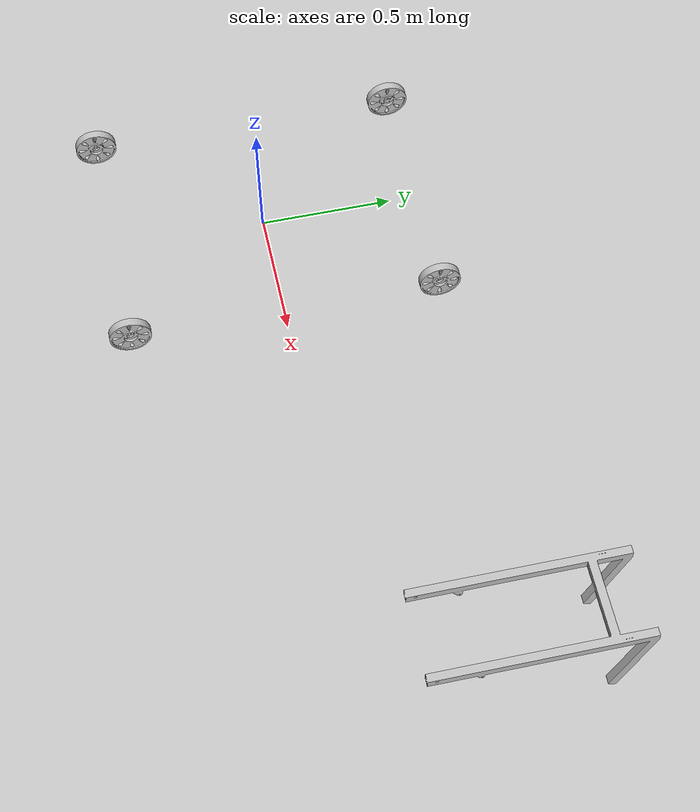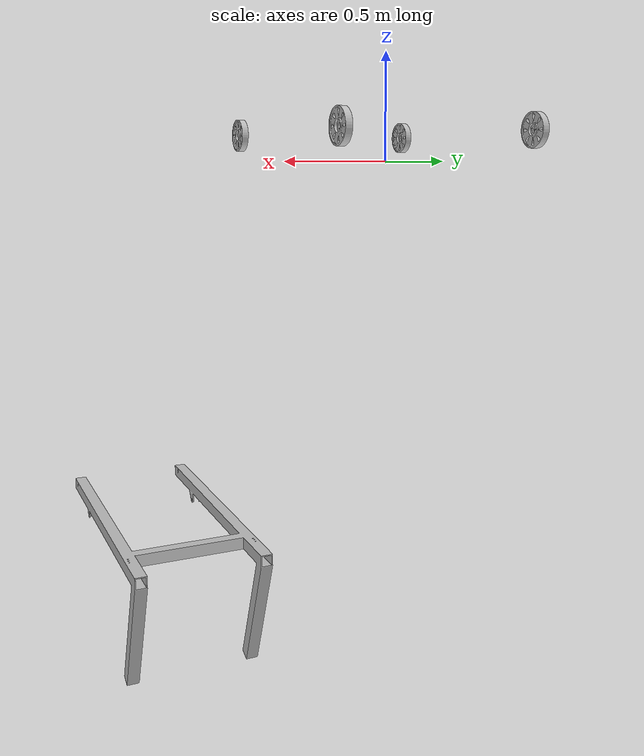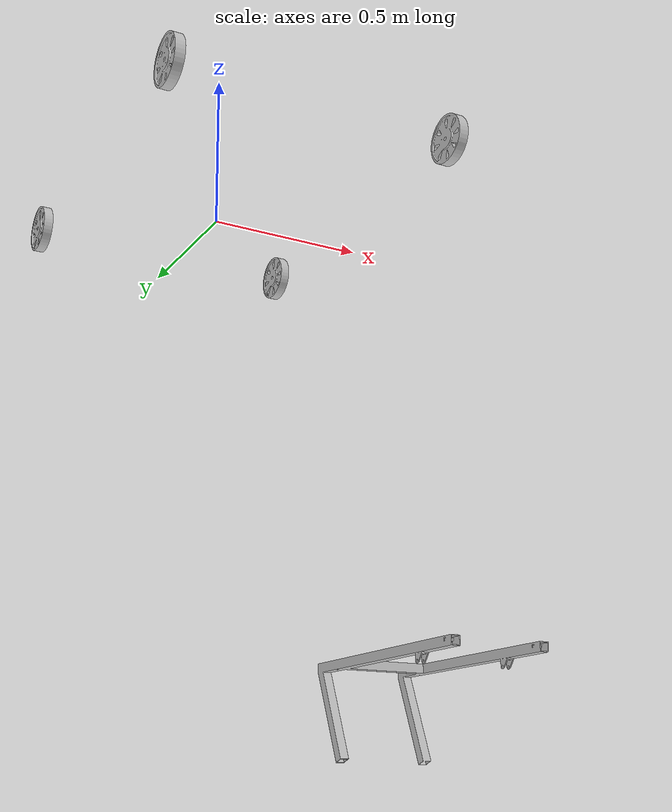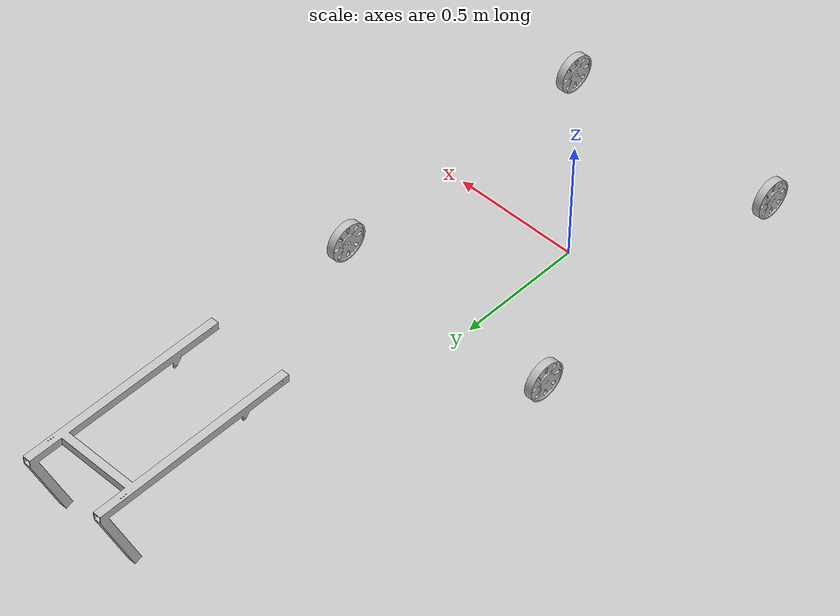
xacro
<?xml version="1.0"?>
<robot name="legendary_rover" xmlns:xacro="http://www.ros.org/wiki/xacro">
  <!-- ******************************* XACRO ******************************* -->
  <xacro:arg name="is_ignition" default="true"/>

  <xacro:arg name="use_ros2_control" default="true"/>
  <xacro:arg name="sim_mode" default="true"/>
  <xacro:include filename="ros2_control.xacro" />
  <xacro:include filename="gazebo_control.xacro" />
  <!-- ******************************* Links ******************************* -->
  <link name="base_link">
  </link>

  <joint name="base_footprint_joint" type="fixed">
      <parent link="base_link"/>
      <child link="base_footprint"/>
      <origin xyz="0 0 0" rpy="0 0 0"/>
  </joint>

  <link name="base_footprint">
  </link>

  <joint name="chassis_joint" type="fixed">
      <parent link="base_link"/>
      <child link="chassis"/>
      <origin xyz="0 0 0.37" rpy="1.5708 0 1.5708"/>
  </joint>
  <link
    name="chassis">
    <inertial>
      <origin
        xyz="0.00322150223165306 -0.0317835441688463 0.0392262662545424"
        rpy="0 0 0" />
      <mass
        value="13.9113253461594" />
      <inertia
        ixx="0.137500217365985"
        ixy="-1.50640906549854E-05"
        ixz="-4.20418177659327E-05"
        iyy="0.158013840900767"
        iyz="1.36293755133581E-06"
        izz="0.0668521247692141" />
    </inertial>
    <visual>
      <origin
        xyz="0 0 0"
        rpy="0 0 0" />
      <geometry>
        <mesh
          filename="package://description/meshes/base_link.STL" />
      </geometry>
      <material
        name="">
        <color
          rgba="0.752941176470588 0.752941176470588 0.752941176470588 1" />
      </material>
    </visual>
    <collision>
      <origin
        xyz="0 0 0"
        rpy="0 0 0" />
      <geometry>
        <mesh
          filename="package://description/meshes/base_link.STL" />
      </geometry>
    </collision>
  </link>
  <link
    name="FL_wheel">
    <inertial>
      <origin
        xyz="-0.0657932903439138 0.00142869200681425 9.9374601122415E-06"
        rpy="0 0 0" />
      <mass
        value="1.6444086136415" />
      <inertia
        ixx="0.0139876753457463"
        ixy="-0.000132035977836167"
        ixz="3.15709065074939E-08"
        iyy="0.00769928738544249"
        iyz="7.8978424094368E-07"
        izz="0.0076927565336923" />
    </inertial>
    <visual>
      <origin
        xyz="0 0 0"
        rpy="0 0 0" />
      <geometry>
        <mesh
          filename="package://description/meshes/FL_wheel.STL" />
      </geometry>
      <material
        name="">
        <color
          rgba="0.752941176470588 0.752941176470588 0.752941176470588 1" />
      </material>
    </visual>
    <collision>
      <origin
        xyz="0 0 0"
        rpy="0 0 0" />
      <geometry>
        <mesh
          filename="package://description/meshes/FL_wheel.STL" />
      </geometry>
    </collision>
  </link>
  <joint
    name="FL_wheel_joint"
    type="continuous">
    <origin
      xyz="0.578691303668632 -0.237965989839832 0.501750000756599"
      rpy="0 0 0" />
    <parent
      link="chassis" />
    <child
      link="FL_wheel" />
    <axis
      xyz="0.999779852268619 -0.0209820637149624 0" />
  </joint>
  <link
    name="BL_wheel">
    <inertial>
      <origin
        xyz="-0.0657953215031118 0.00133190879616998 -1.102290957955E-06"
        rpy="0 0 0" />
      <mass
        value="1.64440861363231" />
      <inertia
        ixx="0.0139876757533367"
        ixy="-0.000132024644816703"
        ixz="-1.42789492436747E-08"
        iyy="0.00769944516583351"
        iyz="6.94182413139629E-08"
        izz="0.00769259835014326" />
    </inertial>
    <visual>
      <origin
        xyz="0 0 0"
        rpy="0 0 0" />
      <geometry>
        <mesh
          filename="package://description/meshes/BL_wheel.STL" />
      </geometry>
      <material
        name="">
        <color
          rgba="0.752941176470588 0.752941176470588 0.752941176470588 1" />
      </material>
    </visual>
    <collision>
      <origin
        xyz="0 0 0"
        rpy="0 0 0" />
      <geometry>
        <mesh
          filename="package://description/meshes/BL_wheel.STL" />
      </geometry>
    </collision>
  </link>
  <joint
    name="BL_wheel_joint"
    type="continuous">
    <origin
      xyz="0.578691303668647 -0.237965989839099 -0.401750000000183"
      rpy="0 0 0" />
    <parent
      link="chassis" />
    <child
      link="BL_wheel" />
    <axis
      xyz="0.999779852268619 -0.0209820637149624 0" />
  </joint>
  <link
    name="FR_wheel">
    <inertial>
      <origin
        xyz="0.0657913230041458 0.0013308416445233 8.05670440151562E-06"
        rpy="0 0 0" />
      <mass
        value="1.64440861363838" />
      <inertia
        ixx="0.0139876756245162"
        ixy="0.000132029029633682"
        ixz="1.32421956480498E-09"
        iyy="0.00769931570657865"
        iyz="-6.97714576728623E-07"
        izz="0.00769272793356072" />
    </inertial>
    <visual>
      <origin
        xyz="0 0 0"
        rpy="0 0 0" />
      <geometry>
        <mesh
          filename="package://description/meshes/FR_wheel.STL" />
      </geometry>
      <material
        name="">
        <color
          rgba="0.752941176470588 0.752941176470588 0.752941176470588 1" />
      </material>
    </visual>
    <collision>
      <origin
        xyz="0 0 0"
        rpy="0 0 0" />
      <geometry>
        <mesh
          filename="package://description/meshes/FR_wheel.STL" />
      </geometry>
    </collision>
  </link>
  <joint
    name="FR_wheel_joint"
    type="continuous">
    <origin
      xyz="-0.578691303668549 -0.237965989839575 0.50175"
      rpy="0 0 0" />
    <parent
      link="chassis" />
    <child
      link="FR_wheel" />
    <axis
      xyz="0.999779852268619 -0.0209820637149687 0" />
  </joint>
  <link
    name="BR_wheel">
    <inertial>
      <origin
        xyz="0.0657913365617738 0.00133019561822817 -1.39445307800745E-07"
        rpy="0 0 0" />
      <mass
        value="1.64440861363467" />
      <inertia
        ixx="0.013987675587488"
        ixy="0.00013202862171795"
        ixz="-1.22366605858997E-08"
        iyy="0.00769943862075944"
        iyz="-5.04460531278865E-08"
        izz="0.00769260505729232" />
    </inertial>
    <visual>
      <origin
        xyz="0 0 0"
        rpy="0 0 0" />
      <geometry>
        <mesh
          filename="package://description/meshes/BR_wheel.STL" />
      </geometry>
      <material
        name="">
        <color
          rgba="0.752941176470588 0.752941176470588 0.752941176470588 1" />
      </material>
    </visual>
    <collision>
      <origin
        xyz="0 0 0"
        rpy="0 0 0" />
      <geometry>
        <mesh
          filename="package://description/meshes/BR_wheel.STL" />
      </geometry>
    </collision>
  </link>
  <joint
    name="BR_wheel_joint"
    type="continuous">
    <origin
      xyz="-0.578691303668548 -0.237965989839575 -0.401750000756777"
      rpy="0 0 0" />
    <parent
      link="chassis" />
    <child
      link="BR_wheel" />
    <axis
      xyz="0.999779852268619 -0.0209820637149688 0" />
  </joint>
</robot>
